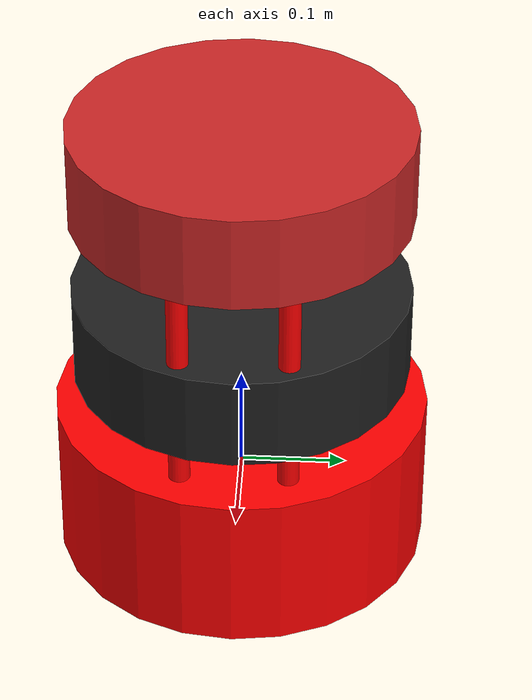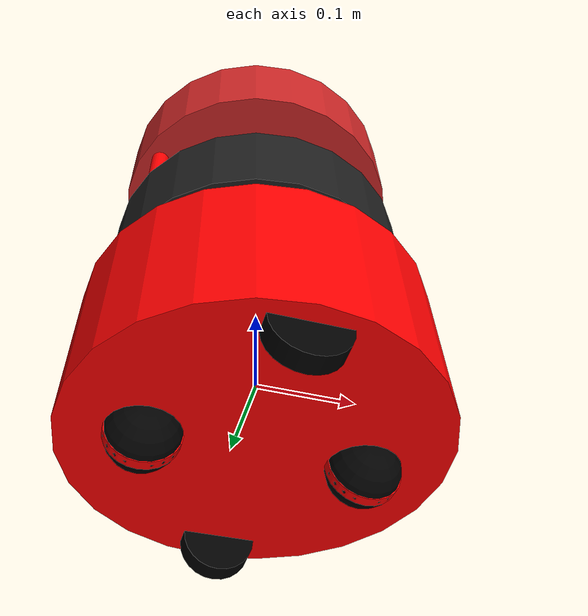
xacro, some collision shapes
<robot name="barista_bot" xmlns:xacro="http://ros.org/wiki/xacro">

  <xacro:include filename="$(find barista_robot_description)/xacro/wheel.xacro" />
  <xacro:include filename="$(find barista_robot_description)/xacro/caster.xacro" />
  <xacro:include filename="$(find barista_robot_description)/xacro/standoff.xacro" />
  <xacro:include filename="$(find barista_robot_description)/xacro/cup_holder_tray.xacro" />
  <xacro:include filename="$(find barista_robot_description)/xacro/laser_scanner.xacro" />

  <material name="red">
    <color rgba="1.0 0.0 0.0 1"/>
  </material>
  <material name="green">
    <color rgba="0.0 1.0 0.0 1"/>
  </material>
  <material name="blue">
    <color rgba="0.0 0.0 1.0 1"/>
  </material>
  <material name="black">
    <color rgba="0.0 0.0 0.0 1"/>
  </material>
  <material name="white">
    <color rgba="1.0 1.0 1.0 1"/>
  </material>

  <link name="base_link"></link>

  <!-- Body -->
  <link name="chassis">
    <visual>
      <geometry>
        <cylinder length="0.155" radius="0.178"/>
      </geometry>
      <material name="red"/>
    </visual>
    <collision>
      <geometry>
        <cylinder length="0.155" radius="0.178" />
      </geometry>
    </collision>
    <inertial>
      <origin xyz="0 0 0" rpy="0 0 0" />
      <mass value="0.5" />
      <inertia ixx="0.00496154167" ixy="0.0" ixz="0.0" iyy="0.00496154167" iyz="0.0" izz="0.007921" />
    </inertial>
  </link>

  <joint name="base_link_joint" type="fixed">
    <origin rpy="0 0 0" xyz="0 0 0" />
    <parent link="base_link" />
    <child link="chassis" />
  </joint>

  <gazebo reference="chassis">
    <material>Gazebo/Red</material>
  </gazebo>

  <!-- Standoff Rods -->
  <xacro:standoff rod_name="rod_1"/>
  <xacro:standoff rod_name="rod_2"/>
  <xacro:standoff rod_name="rod_3"/>
  <xacro:standoff rod_name="rod_4"/>

  <joint name="rod_1_joint" type="fixed">
    <parent link="base_link"/>
    <child link="rod_1"/>
    <origin rpy="0 0 0" xyz="0.130 0.05 0.185"/>
  </joint>

  <joint name="rod_2_joint" type="fixed">
    <parent link="base_link"/>
    <child link="rod_2"/>
    <origin xyz="0.130 -0.05 0.185" rpy="0 0 0"/>
  </joint>

  <joint name="rod_3_joint" type="fixed">
    <parent link="base_link"/>
    <child link="rod_3"/>
    <origin xyz="-0.130 0.05 0.185" rpy="0 0 0"/>
  </joint>

  <joint name="rod_4_joint" type="fixed">
    <parent link="base_link"/>
    <child link="rod_4"/>
    <origin xyz="-0.130 -0.05 0.185" rpy="0 0 0"/>
  </joint>

  <!-- Cup Holder Tray -->
  <xacro:cup_holder_tray cup_name="cupholder_link"/>

  <joint name="cupholder_joint" type="fixed">
    <parent link="base_link"/>
    <child link="cupholder_link"/>
    <origin xyz="0 0 0.330" rpy="0 0 0"/>
  </joint>

  <gazebo reference="cupholder_link">
    <material>Gazebo/Red</material>
  </gazebo>

  <!-- Wheels -->
    <xacro:wheel wheel_name="left_wheel"/>
    <xacro:wheel wheel_name="right_wheel"/>

    <joint name="joint_left_wheel" type="continuous">
    <origin rpy="0 0 0" xyz="0 0.15 -0.0775"/>
    <child link="left_wheel"/>
    <parent link="chassis"/>
    <axis xyz="0 1 0"/>
    </joint>

    <joint name="joint_right_wheel" type="continuous">
    <origin rpy="0 0 0" xyz="0 -0.15 -0.0775"/>
    <child link="right_wheel"/>
    <parent link="chassis"/>
    <axis xyz="0 1 0"/>
    </joint>

    <gazebo reference="left_wheel">
    <kp>10000000000000.0</kp>
    <kd>10000000000000.0</kd>
    <mu1>10.0</mu1>
    <mu2>10.0</mu2>
    <material>Gazebo/Black</material>
    </gazebo>

    <gazebo reference="right_wheel">
    <kp>10000000000000.0</kp>
    <kd>10000000000000.0</kd>
    <mu1>10.0</mu1>
    <mu2>10.0</mu2>
    <material>Gazebo/Black</material>
    </gazebo>

  <!-- Caster Wheels -->
  <xacro:caster posi="front"/>
  <xacro:caster posi="back"/>

  <joint name="front_yaw_joint" type="fixed">
    <origin rpy="0 0 0" xyz="0.10 0 -0.0770"/>
    <parent link="chassis"/>
    <child link="front_yaw_link"/>
    <axis xyz="0 0 1"/>
  </joint>

  <joint name="front_roll_joint" type="fixed">
    <origin rpy="0 0 0" xyz="0 0 0"/>
    <parent link="front_yaw_link"/>
    <child link="front_roll_link"/>
    <axis xyz="1 0 0"/>
  </joint>

  <joint name="front_pitch_joint" type="fixed">
    <origin rpy="0 0 0" xyz="0 0 0"/>
    <parent link="front_roll_link"/>
    <child link="front_pitch_link"/>
    <axis xyz="0 1 0"/>
  </joint>

  <joint name="back_yaw_joint" type="fixed">
    <origin rpy="0 0 0" xyz="-0.10 0 -0.0770"/>
    <parent link="chassis"/>
    <child link="back_yaw_link"/>
    <axis xyz="0 0 1"/>
  </joint>

  <joint name="back_roll_joint" type="fixed">
    <origin rpy="0 0 0" xyz="0 0 0"/>
    <parent link="back_yaw_link"/>
    <child link="back_roll_link"/>
    <axis xyz="1 0 0"/>
  </joint>

  <joint name="back_pitch_joint" type="fixed">
    <origin rpy="0 0 0" xyz="0 0 0"/>
    <parent link="back_roll_link"/>
    <child link="back_pitch_link"/>
    <axis xyz="0 1 0"/>
  </joint>

  <!-- Laser Scanner -->
  <xacro:laser_scanner include_laser="True"/>

  <!-- Differential drive -->
  <gazebo>
    <plugin filename="libgazebo_ros_diff_drive.so" name="differential_drive_controller">
      <!-- wheels -->
      <left_joint>joint_left_wheel</left_joint>
      <right_joint>joint_right_wheel</right_joint>
      <!-- kinematics -->
      <wheel_separation>0.3</wheel_separation>
      <wheel_diameter>0.0704</wheel_diameter>
      <!-- limits -->
      <max_wheel_torque>1.0</max_wheel_torque>
      <max_wheel_acceleration>2.0</max_wheel_acceleration>
      <!-- output -->
      <publish_odom>true</publish_odom>
      <publish_odom_tf>true</publish_odom_tf>
      <odometry_frame>odom</odometry_frame>
      <robot_base_frame>base_link</robot_base_frame>
    </plugin>
  </gazebo>
</robot>

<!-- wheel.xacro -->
<robot name="wheel" xmlns:xacro="http://ros.org/wiki/xacro">
  <xacro:property name="wheel_radius" value="0.0352"/>
  <xacro:property name="wheel_width" value="0.0206"/>

  <xacro:macro name="wheel" params="wheel_name">
    <link name="${wheel_name}">
      <visual>
        <origin rpy="0 1.5707 1.5707" xyz="0 0 0"/>
        <geometry>
          <cylinder length="${wheel_width}" radius="${wheel_radius}"/>
        </geometry>
        <material name="black"/>
      </visual>
      <collision>
        <origin rpy="0 1.5707 1.5707" xyz="0 0 0"/>
        <geometry>
          <cylinder length="${wheel_width}" radius="${wheel_radius}"/>
        </geometry>
      </collision>
      <inertial>
        <origin rpy="0 1.5707 1.5707" xyz="0 0 0"/>
        <mass value="0.5"/>
        <inertia ixx="0.000172561667" ixy="0.0" ixz="0.0" iyy="0.000172561667" iyz="0.0" izz="0.00030976"/>
      </inertial>
    </link>
  </xacro:macro>
</robot>

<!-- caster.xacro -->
<robot name="caster" xmlns:xacro="http://ros.org/wiki/xacro">
  <xacro:property name="caster_length" value="0.01"/>
  <xacro:property name="caster_radius" value="0.035"/>

  <xacro:macro name="caster" params="posi">
    <link name="${posi}_yaw_link">
      <visual>
        <origin rpy="0 1.5707 1.5707" xyz="0 0 0"/>
        <geometry>
          <cylinder length="${caster_length}" radius="${caster_radius}"/>
        </geometry>
        <material name="red"/>
      </visual>
      <collision>
        <origin rpy="0 1.5707 1.5707" xyz="0 0 0"/>
        <geometry>
          <cylinder length="${caster_length}" radius="${caster_radius}"/>
        </geometry>
      </collision>
    </link>

    <link name="${posi}_roll_link">
      <visual>
        <origin rpy="0 1.5707 1.5707" xyz="0 0 0"/>
        <geometry>
          <cylinder length="${caster_length}" radius="${caster_radius}"/>
        </geometry>
        <material name="blue"/>
      </visual>
      <collision>
        <origin rpy="0 1.5707 1.5707" xyz="0 0 0"/>
        <geometry>
          <cylinder length="${caster_length}" radius="${caster_radius}"/>
        </geometry>
      </collision>
    </link>

    <link name="${posi}_pitch_link">
      <visual>
        <origin rpy="0 1.5707 1.5707" xyz="0 0 0"/>
        <geometry>
          <sphere radius="${caster_radius}"/>
        </geometry>
        <material name="black"/>
      </visual>
      <collision>
        <origin rpy="0 1.5707 1.5707" xyz="0 0 0"/>
        <geometry>
          <cylinder length="${caster_length}" radius="${caster_radius}"/>
        </geometry>
      </collision>
    </link>
  </xacro:macro>
</robot>

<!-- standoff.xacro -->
<robot name="standoff" xmlns:xacro="http://ros.org/wiki/xacro">
  <xacro:property name="rod_length" value="0.22" />
  <xacro:property name="rod_radius" value="0.01" />

  <xacro:macro name="standoff" params="rod_name">
    <link name="${rod_name}">
      <visual>
        <origin xyz="0 0 0" rpy="0 0 0"/>
        <geometry>
          <cylinder length="${rod_length}" radius="${rod_radius}"/>
        </geometry>
        <material name="red"/>
      </visual>
      <collision>
        <origin xyz="0 0 0" rpy="0 0 0"/>
        <geometry>
          <cylinder length="${rod_length}" radius="${rod_radius}"/>
        </geometry>
      </collision>
      <inertial>
        <origin xyz="0 0 0" rpy="0 0 0"/>
        <mass value="0.5"/>
        <inertia ixx="0.00202916667" ixy="0.0" ixz="0.0" iyy="0.00202916667" iyz="0.0" izz="0.000025"/>
      </inertial>
    </link>
  </xacro:macro>
</robot>

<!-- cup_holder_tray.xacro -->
<robot name="cup_holder_tray"  xmlns:xacro="http://ros.org/wiki/xacro">
  <xacro:property name="cup_length" value="0.09" />
  <xacro:property name="cup_radius" value="0.16" />

  <xacro:macro name="cup_holder_tray" params="cup_name">
    <link name="${cup_name}">
      <visual>
        <origin xyz="0 0 0" rpy="0 0 0"/>
        <geometry>
          <cylinder length="${cup_length}" radius="${cup_radius}"/>
        </geometry>
      </visual>
      <collision>
        <origin xyz="0 0 0" rpy="0 0 0"/>
        <geometry>
          <cylinder length="${cup_length}" radius="${cup_radius}"/>
        </geometry>
      </collision>
      <inertial>
        <origin xyz="0 0 0" rpy="0 0 0"/>
        <mass value="1"/>
        <inertia ixx="0.007075" ixy="0.0" ixz="0.0" iyy="0.007075" iyz="0.0" izz="0.0128"/>
      </inertial>
    </link>
  </xacro:macro>
</robot>

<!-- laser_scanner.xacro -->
<robot xmlns:xacro="http://ros.org/wiki/xacro">

  <xacro:macro name="laser_scanner" params="include_laser:=true">
    <xacro:if value="${include_laser}">
      <link name="lidar">
        <visual>
          <origin rpy="0 0 0" xyz="0 0 0.08" />
          <geometry>
            <mesh filename="package://barista_robot_description/meshes/hokuyo_utm_30lx.dae" scale="0.5 0.5 0.5"/>
          </geometry>
        </visual>
        <collision>
          <origin rpy="0 0 0" xyz="0 0 0.08" />
          <geometry>
            <cylinder length="0.09" radius="0.16"/>
          </geometry>
        </collision>
        <inertial>
          <origin xyz="0 0 0" rpy="0 0 0"/>
          <mass value="1"/>
          <inertia ixx="0.007075" ixy="0.0" ixz="0.0" iyy="0.007075" iyz="0.0" izz="0.0128"/>
        </inertial>
      </link>

      <joint name="lidar_joint" type="fixed">
        <origin rpy="0 0 0" xyz="0 0 0.08"/>
        <parent link="chassis"/>
        <child link="lidar"/>
      </joint>

      <gazebo reference="lidar">
        <material>Gazebo/Black</material>
      </gazebo>

      <gazebo reference="lidar">
        <sensor name="sensor_ray" type="ray">
          <pose>0 0 0 0 0 0</pose>
          <ray>
            <scan>
              <horizontal>
                <samples>720</samples>
                <resolution>1.0</resolution>
                <min_angle>-1.57</min_angle>
                <max_angle>1.57</max_angle>
              </horizontal>
            </scan>
            <range>
              <min>0.1</min>
              <max>10.0</max>
            </range>
          </ray>
          <always_on>true</always_on>
          <visualize>true</visualize>
          <update_rate>20.0</update_rate>
          <plugin name="laser" filename="libgazebo_ros_ray_sensor.so">
            <ros>
              <remapping>~/out:=scan</remapping>
            </ros>
            <output_type>sensor_msgs/LaserScan</output_type>
          </plugin>
        </sensor>
      </gazebo>
    </xacro:if>
  </xacro:macro>
</robot>
